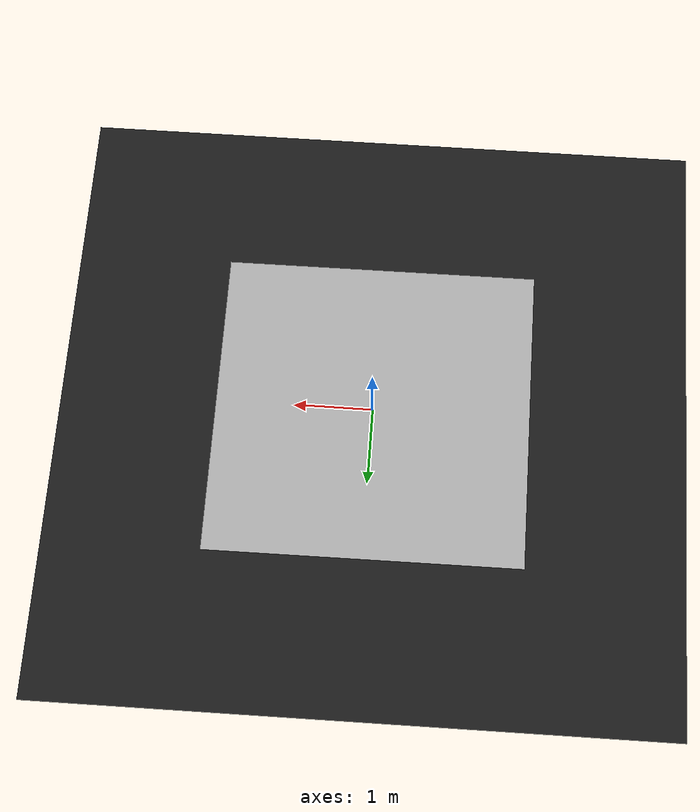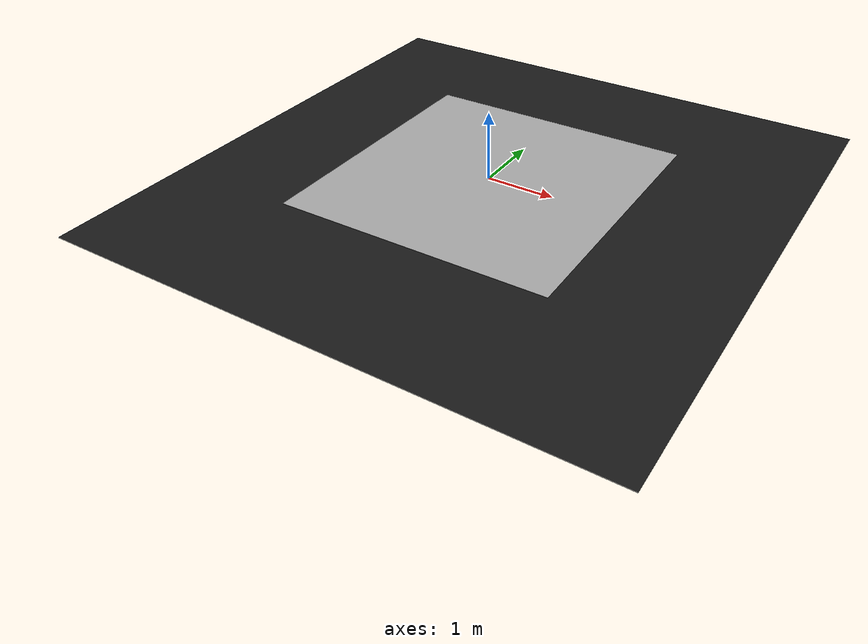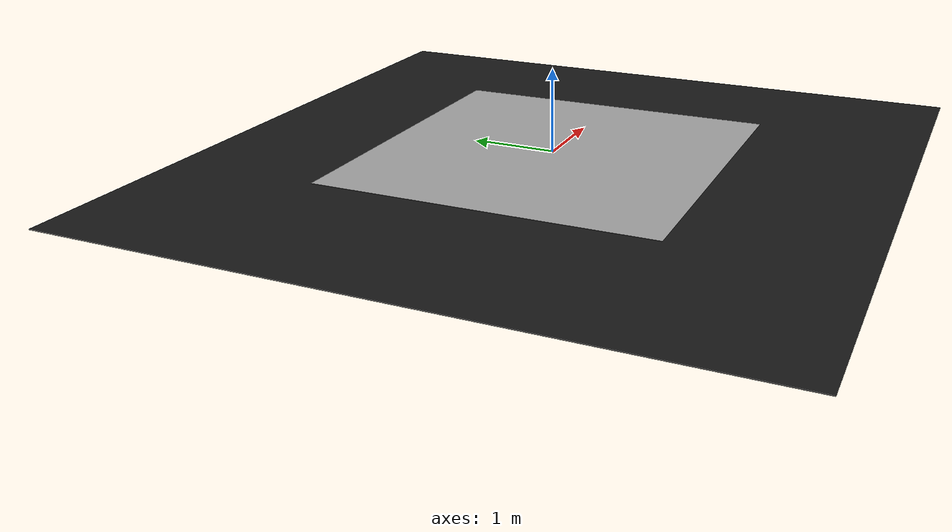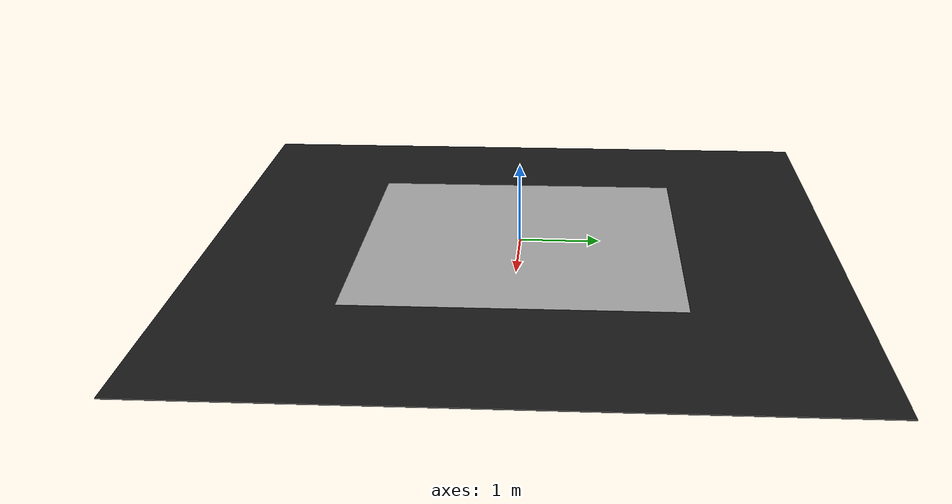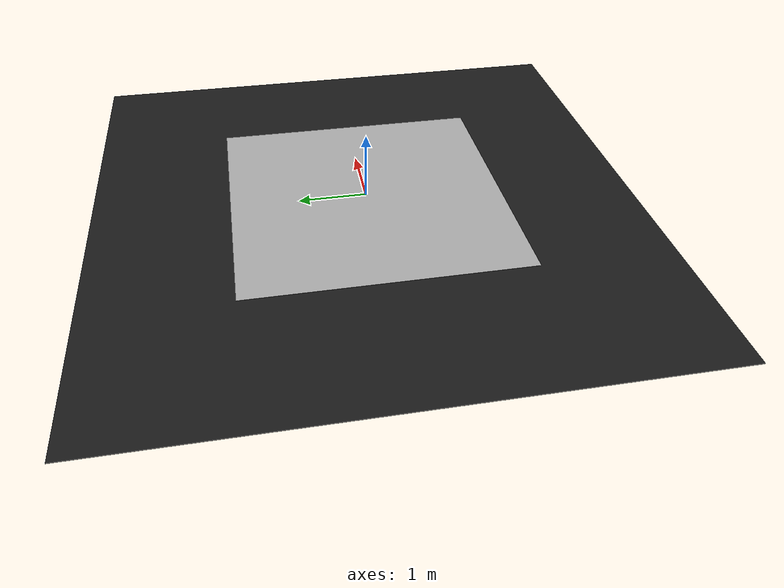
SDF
<?xml version="1.0" ?>
<sdf version="1.6">
  <world name="lane_tracking_example">
    <scene>
      <ambient>0 0 0 1</ambient>
      <shadows>0</shadows>
      <grid>0</grid>
      <background>0.7 0.7 0.7 1</background>
    </scene>

    <include>
      <uri>model://sun</uri>
    </include>

    <model name="lane_tracking_example">
      <static>true</static>
      <include>
        <uri>model://lane_tracking_example</uri>
        <pose> 0 0 0 0 0 -3.14</pose>
      </include>
    </model>

    <model name='ground2'>
      <pose frame=''>0 0 -0.1 0 -0 0</pose>
      <static>1</static>
      <link name='ground'>
        <collision name='ground_coll'>
          <geometry>
            <box>
              <size>8 8 0.01</size>
            </box>
          </geometry>
          <surface>
            <contact>
              <ode/>
            </contact>
            <bounce/>
            <friction>
              <torsional>
                <ode/>
              </torsional>
              <ode/>
            </friction>
          </surface>
          <max_contacts>10</max_contacts>
        </collision>
        <visual name='ground_vis'>
          <geometry>
            <box>
              <size>8 8 0.01</size>
            </box>
          </geometry>
          <material>
            <script>
              <uri>file://media/materials/scripts/gazebo.material</uri>
              <name>Gazebo/FlatBlack</name>
            </script>
          </material>
        </visual>
        <self_collide>0</self_collide>
        <kinematic>0</kinematic>
        <gravity>1</gravity>
      </link>
    </model>

    <physics type="ode">
      <max_step_size>0.001</max_step_size>
      <real_time_factor>1</real_time_factor>
      <real_time_update_rate>1000</real_time_update_rate>
    </physics>

    <scene>
      <ambient>0.4 0.4 0.4 1</ambient>
      <background>0.7 0.7 0.7 1</background>
      <shadows>true</shadows>
    </scene>
  </world>
</sdf>

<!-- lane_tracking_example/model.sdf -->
<sdf version="1.6">
  <model name="course">
    <static>true</static>
    <link name="course_link">
      <collision name="course_collision">
        <geometry>
          <plane>
            <normal>0 0 1</normal>
            <size>4 4</size>
          </plane>
        </geometry>
        <surface>
          <friction>
            <ode>
              <mu>100</mu>
              <mu2>50</mu2>
            </ode>
          </friction>
        </surface>
      </collision>
      <visual name="course_visual">
        <cast_shadows>false</cast_shadows>
        <geometry>
	        <plane>
            <normal>0 0 1</normal>
            <size>4 4</size>
          </plane>
        </geometry>
	      <material>
          <script>
            <uri>model://lane_tracking_example/materials/scripts</uri>
            <uri>model://lane_tracking_example/materials/textures/</uri>
            <name>course</name>
          </script>
        </material>
      </visual>
    </link>
  </model>
</sdf>
